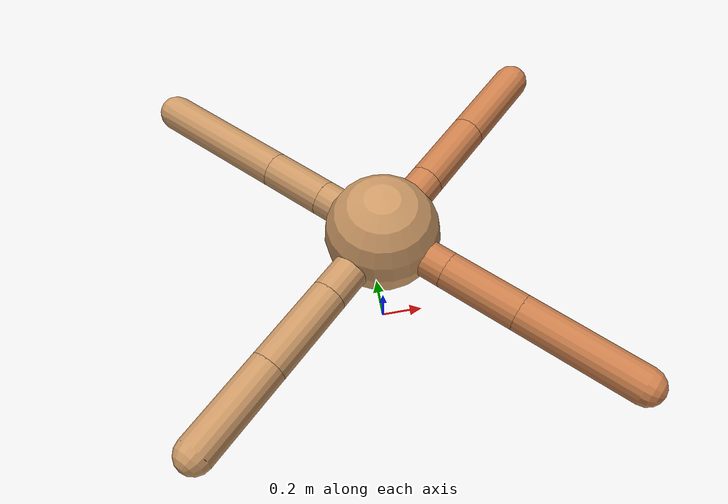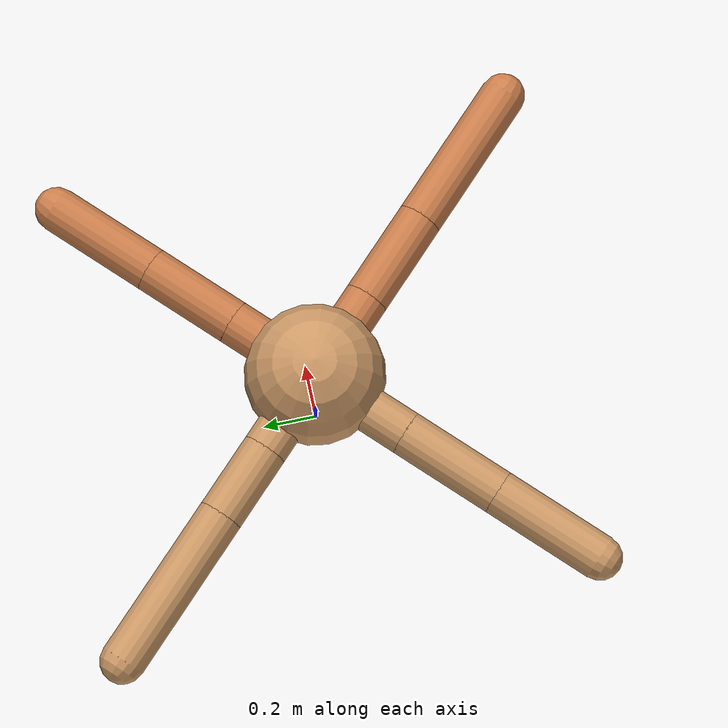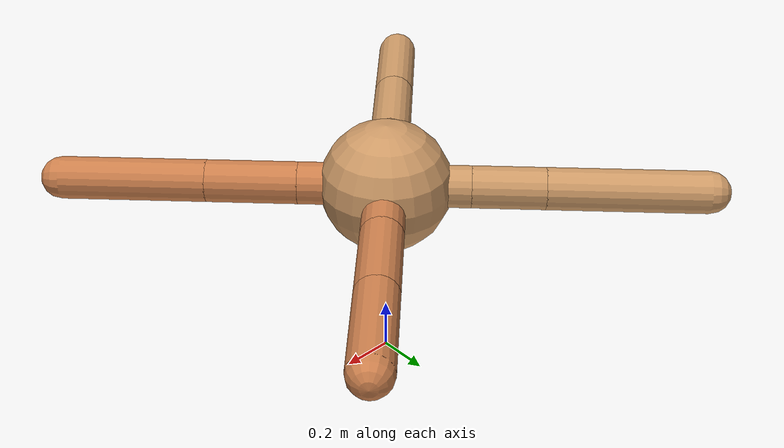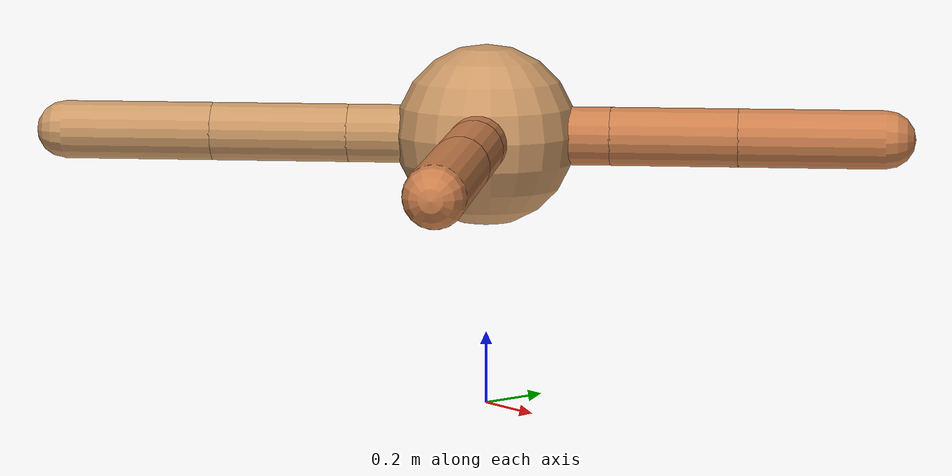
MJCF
<mujoco model="ant">
  <compiler angle="degree" coordinate="local" inertiafromgeom="true" />
  <option integrator="RK4" timestep="0.01" />
  <custom>
    <numeric data="0.0 0.0 0.55 1.0 0.0 0.0 0.0 0.0 1.0 0.0 -1.0 0.0 -1.0 0.0 1.0" name="init_qpos" />
  </custom>
  <default>
    <joint armature="1" damping="1" limited="true" />
    <geom conaffinity="0" condim="3" density="5.0" friction="1.5 0.1 0.1" margin="0.01" rgba="0.8 0.6 0.4 1" />
  </default>
  <worldbody>
    <body name="torso" pos="0 0 0.75">
      <geom name="torso_geom" pos="0 0 0" size="0.25" type="sphere" />

      <body name="front_left_leg" pos="0 0 0">
        <geom fromto="0.0 0.0 0.0 0.2419942924842482 0.2419942924842482 0.0" name="aux_1_geom" size="0.08" type="capsule" rgba=".8 .5 .3 1" />
        <body name="aux_1" pos="0.2419942924842482 0.2419942924842482 0.0">
          <joint axis="0 0 1" name="hip_1" pos="0.0 0.0 0.0" range="-40 40" type="hinge" />
          <geom fromto="0.0 0.0 0.0 0.24681812335372225 0.24681812335372225 0.0" name="left_leg_geom" size="0.08" type="capsule" rgba=".8 .5 .3 1" />
          <body pos="0.24681812335372225 0.24681812335372225 0.0" name="front_left_foot">
            <joint axis="-1 1 0" name="ankle_1" pos="0.0 0.0 0.0" range="30 100" type="hinge" />
            <geom fromto="0.0 0.0 0.0 0.28459715113489814 0.28459715113489814 0.0" name="left_ankle_geom" size="0.08" type="capsule" rgba=".8 .5 .3 1" />
          </body>
        </body>
      </body>
      <body name="front_right_leg" pos="0 0 0">
        <geom fromto="0.0 0.0 0.0 -0.2248981051299458 0.2248981051299458 0.0" name="aux_2_geom" size="0.08" type="capsule" />
        <body name="aux_2" pos="-0.2248981051299458 0.2248981051299458 0.0">
          <joint axis="0 0 1" name="hip_2" pos="0.0 0.0 0.0" range="-40 40" type="hinge" />
          <geom fromto="0.0 0.0 0.0 -0.19578536346135667 0.19578536346135667 0.0" name="right_leg_geom" size="0.08" type="capsule" />
          <body pos="-0.19578536346135667 0.19578536346135667 0.0" name="front_right_foot">
            <joint axis="1 1 0" name="ankle_2" pos="0.0 0.0 0.0" range="-100 -30" type="hinge" />
            <geom fromto="0.0 0.0 0.0 -0.42718128380683446 0.42718128380683446 0.0" name="right_ankle_geom" size="0.08" type="capsule" />
          </body>
        </body>
      </body>
      <body name="left_back_leg" pos="0 0 0">
        <geom fromto="0.0 0.0 0.0 -0.268132216618545 -0.268132216618545 0.0" name="aux_3_geom" size="0.08" type="capsule" />
        <body name="aux_3" pos="-0.268132216618545 -0.268132216618545 0.0">
          <joint axis="0 0 1" name="hip_3" pos="0.0 0.0 0.0" range="-40 40" type="hinge" />
          <geom fromto="0.0 0.0 0.0 -0.2689004015457511 -0.2689004015457511 0.0" name="back_leg_geom" size="0.08" type="capsule" />
          <body pos="-0.2689004015457511 -0.2689004015457511 0.0" name="left_back_foot">
            <joint axis="-1 1 0" name="ankle_3" pos="0.0 0.0 0.0" range="-100 -30" type="hinge" />
            <geom fromto="0.0 0.0 0.0 -0.2941776986252956 -0.2941776986252956 0.0" name="third_ankle_geom" size="0.08" type="capsule" />
          </body>
        </body>
      </body>
      <body name="right_back_leg" pos="0 0 0">
        <geom fromto="0.0 0.0 0.0 0.23351318375680946 -0.23351318375680946 0.0" name="aux_4_geom" size="0.08" type="capsule" rgba=".8 .5 .3 1" />
        <body name="aux_4" pos="0.23351318375680946 -0.23351318375680946 0.0">
          <joint axis="0 0 1" name="hip_4" pos="0.0 0.0 0.0" range="-40 40" type="hinge" />
          <geom fromto="0.0 0.0 0.0 0.24341450883145074 -0.24341450883145074 0.0" name="rightback_leg_geom" size="0.08" type="capsule" rgba=".8 .5 .3 1" />
          <body pos="0.24341450883145074 -0.24341450883145074 0.0" name="right_back_foot">
            <joint axis="1 1 0" name="ankle_4" pos="0.0 0.0 0.0" range="30 100" type="hinge" />
            <geom fromto="0.0 0.0 0.0 0.38741666350547055 -0.38741666350547055 0.0" name="fourth_ankle_geom" size="0.08" type="capsule" rgba=".8 .5 .3 1" />
          </body>
        </body>
      </body>
    </body>
  </worldbody>
  <actuator>
    <motor ctrllimited="true" ctrlrange="-1.0 1.0" joint="hip_4" gear="150" />
    <motor ctrllimited="true" ctrlrange="-1.0 1.0" joint="ankle_4" gear="150" />
    <motor ctrllimited="true" ctrlrange="-1.0 1.0" joint="hip_1" gear="150" />
    <motor ctrllimited="true" ctrlrange="-1.0 1.0" joint="ankle_1" gear="150" />
    <motor ctrllimited="true" ctrlrange="-1.0 1.0" joint="hip_2" gear="150" />
    <motor ctrllimited="true" ctrlrange="-1.0 1.0" joint="ankle_2" gear="150" />
    <motor ctrllimited="true" ctrlrange="-1.0 1.0" joint="hip_3" gear="150" />
    <motor ctrllimited="true" ctrlrange="-1.0 1.0" joint="ankle_3" gear="150" />
  </actuator>
</mujoco>
